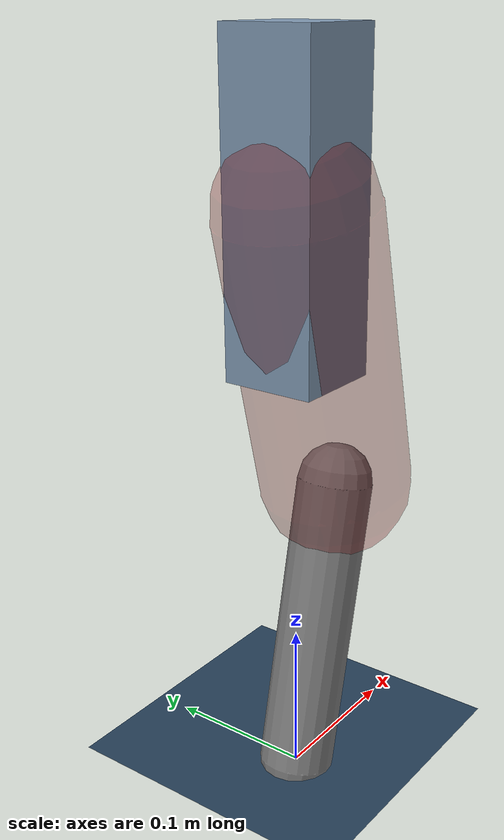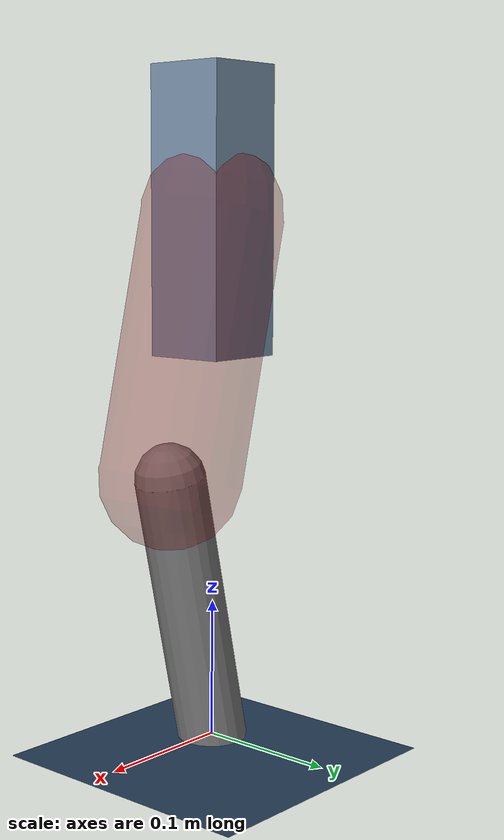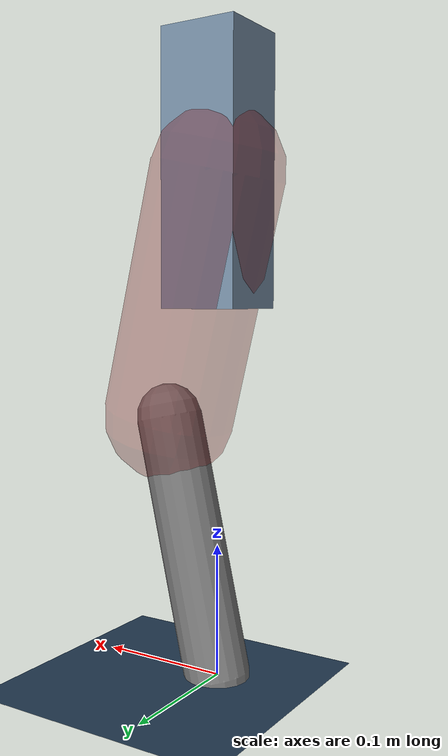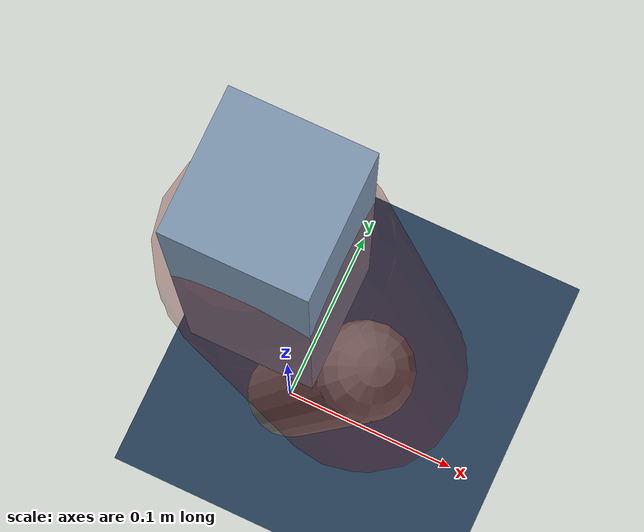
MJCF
<mujoco model="Hopper2D">
	<compiler inertiafromgeom="true" angle="radian" />
	<option timestep="0.001" integrator="implicit" cone="elliptic" solver="Newton" tolerance="1e-10" />

	<default>
		<geom contype="1" conaffinity="1" condim="3" friction="2 0.005 0.0001" solref="0.005 1" />
		<joint limited="true" damping="0.1" />
	</default>

	<asset>
		<texture name="skybox" type="skybox" builtin="gradient" rgb1=".4 .6 .8" rgb2="0 0 0" width="800" height="800" />
		<texture name="grid" type="2d" builtin="checker" rgb1=".1 .2 .3" rgb2=".2 .3 .4" width="300" height="300" mark="edge" markrgb=".2 .3 .4" />
		<material name="ground" texture="grid" texrepeat="1 1" texuniform="true" reflectance="0.1" />
		<material name="leg" rgba="0.5 0.6 0.7 1" />
	</asset>

	<worldbody>

		<geom name="floor" type="plane" size="5 5 0.25" material="ground" />

		<light directional="false" diffuse="0.8 0.8 0.8" specular="0.3 0.3 0.3" pos="0 0 2" dir="0 0 -1" />
		<light mode="targetbodycom" target="base" directional="false" diffuse="0.8 0.8 0.8" specular="0.3 0.3 0.3" pos="0 0 2" dir="0 0 -1" />

		<camera name="fixed" pos="0 -2 1" xyaxes="1 0 0 0 0 1" />
		<camera name="tracking" mode="trackcom" pos="0 -3 1" />

		<body name="root" pos="0 0 0.37745612736770495">
			<joint name="slide_x" type="slide" axis="1 0 0" range="-100 100" />
			<joint name="slide_z" type="slide" axis="0 0 1" range="0 10" />

			<body name="base" pos="0 0 0">
				<geom name="torso" type="box" size="0.03 0.03 0.1" mass="3.241" material="leg" />

				<body name="link1" pos="0 0 0" euler="0 1.3353247006864573 0">
					<joint type="hinge" axis="0 -1 0" pos="0 0 0" name="hinge1" limited="true" range="-3.14 3.14" stiffness="0" damping="0.1" />
					<geom name="thigh" type="capsule" fromto="0 0 0 0.18733045331575593 0 0" size="0.05" rgba="0.5 0 0 0.3" mass="0.6984261332893898" />

					<body name="link2" pos="0.18733045331575593 0 0" euler="0 0.45563111688021024 0">
						<joint type="hinge" axis="0 -1 0" pos="0 0 0" name="hinge2" limited="true" range="-3.14 3.14" stiffness="0" damping="0.1" />
						<geom name="shank" type="capsule" fromto="0 0 0 0.20012567405194903 0 0" size="0.025" mass="0.4010005392415592" />

					</body>
				</body>
			</body>
		</body>
	</worldbody>

	<actuator>
		<motor name="torque1" joint="hinge1" ctrlrange="-71.86414918622373 71.86414918622373" ctrllimited="true" gear="1" />
		<motor name="torque2" joint="hinge2" ctrlrange="-223.3964584465399 223.3964584465399" ctrllimited="true" gear="1" />
	</actuator>
</mujoco>
